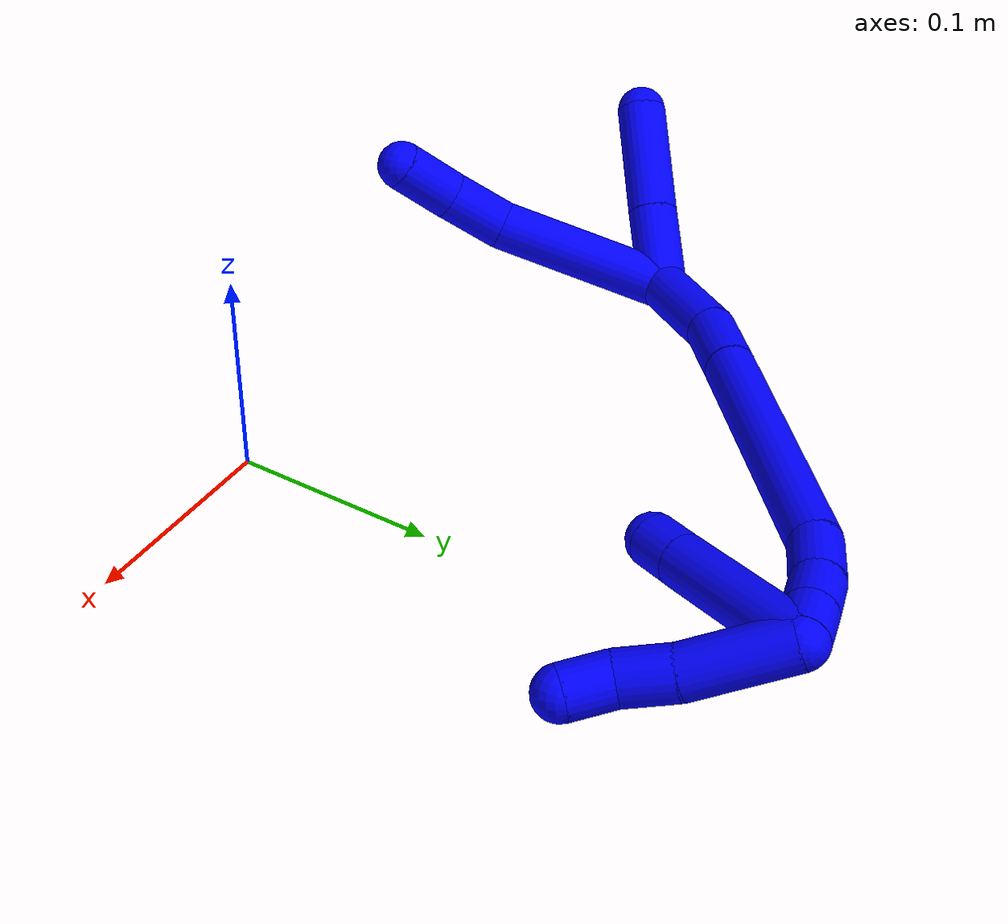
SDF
<sdf version="1.7">
 <world name="default">
  <model name="1">
   <static>0</static>
   <link name="1">
    <collision name="collision-cylinder-e_1_2_8">
     <pose>0.02136 -0.020133 -0.032819 2.59135 0.506487 1.48405</pose>
     <geometry><cylinder><radius>0.0125</radius><length>0.088061</length></cylinder></geometry>
     <surface>
      <friction><ode><mu>1.16</mu><mu2>1.16</mu2><slip1>0</slip1><slip2>0</slip2></ode></friction>
      <contact><ode><kp>1e+06</kp><kd>1</kd><max_vel>0</max_vel><min_depth>0.001</min_depth></ode></contact>
     </surface>
    </collision>
    <visual name="visual-cylinder-e_1_2_8">
     <pose>0.02136 -0.020133 -0.032819 2.59135 0.506487 1.48405</pose>
     <geometry><cylinder><radius>0.0125</radius><length>0.088061</length></cylinder></geometry>
     <material><ambient>0 0 1 1</ambient></material>
    </visual>
    <collision name="collision-cylinder-e_2_8_9">
     <pose>0.050889 -0.050551 -0.074156 2.26246 0.549048 1.07923</pose>
     <geometry><cylinder><radius>0.0125</radius><length>0.03131</length></cylinder></geometry>
     <surface>
      <friction><ode><mu>1.16</mu><mu2>1.16</mu2><slip1>0</slip1><slip2>0</slip2></ode></friction>
      <contact><ode><kp>1e+06</kp><kd>1</kd><max_vel>0</max_vel><min_depth>0.001</min_depth></ode></contact>
     </surface>
    </collision>
    <visual name="visual-cylinder-e_2_8_9">
     <pose>0.050889 -0.050551 -0.074156 2.26246 0.549048 1.07923</pose>
     <geometry><cylinder><radius>0.0125</radius><length>0.03131</length></cylinder></geometry>
     <material><ambient>0 0 1 1</ambient></material>
    </visual>
    <collision name="collision-cylinder-e_3_9_6">
     <pose>0.068443 -0.071785 -0.087831 2.01098 0.659537 0.989552</pose>
     <geometry><cylinder><radius>0.0125</radius><length>0.030629</length></cylinder></geometry>
     <surface>
      <friction><ode><mu>1.16</mu><mu2>1.16</mu2><slip1>0</slip1><slip2>0</slip2></ode></friction>
      <contact><ode><kp>1e+06</kp><kd>1</kd><max_vel>0</max_vel><min_depth>0.001</min_depth></ode></contact>
     </surface>
    </collision>
    <visual name="visual-cylinder-e_3_9_6">
     <pose>0.068443 -0.071785 -0.087831 2.01098 0.659537 0.989552</pose>
     <geometry><cylinder><radius>0.0125</radius><length>0.030629</length></cylinder></geometry>
     <material><ambient>0 0 1 1</ambient></material>
    </visual>
    <collision name="collision-cylinder-e_1_2_10">
     <pose>-0.01025 -0.014783 -0.009461 2.14009 -0.528571 -0.918436</pose>
     <geometry><cylinder><radius>0.0125</radius><length>0.04065</length></cylinder></geometry>
     <surface>
      <friction><ode><mu>1.16</mu><mu2>1.16</mu2><slip1>0</slip1><slip2>0</slip2></ode></friction>
      <contact><ode><kp>1e+06</kp><kd>1</kd><max_vel>0</max_vel><min_depth>0.001</min_depth></ode></contact>
     </surface>
    </collision>
    <visual name="visual-cylinder-e_1_2_10">
     <pose>-0.01025 -0.014783 -0.009461 2.14009 -0.528571 -0.918436</pose>
     <geometry><cylinder><radius>0.0125</radius><length>0.04065</length></cylinder></geometry>
     <material><ambient>0 0 1 1</ambient></material>
    </visual>
    <collision name="collision-cylinder-e_2_10_5">
     <pose>-0.035967 -0.0509 -0.032569 2.1399 -0.548276 -0.949144</pose>
     <geometry><cylinder><radius>0.0125</radius><length>0.05935</length></cylinder></geometry>
     <surface>
      <friction><ode><mu>1.16</mu><mu2>1.16</mu2><slip1>0</slip1><slip2>0</slip2></ode></friction>
      <contact><ode><kp>1e+06</kp><kd>1</kd><max_vel>0</max_vel><min_depth>0.001</min_depth></ode></contact>
     </surface>
    </collision>
    <visual name="visual-cylinder-e_2_10_5">
     <pose>-0.035967 -0.0509 -0.032569 2.1399 -0.548276 -0.949144</pose>
     <geometry><cylinder><radius>0.0125</radius><length>0.05935</length></cylinder></geometry>
     <material><ambient>0 0 1 1</ambient></material>
    </visual>
    <collision name="collision-cylinder-e_1_2_11">
     <pose>0.009969 0.004055 0.024302 -0.165315 0.384473 -0.032248</pose>
     <geometry><cylinder><radius>0.0125</radius><length>0.053157</length></cylinder></geometry>
     <surface>
      <friction><ode><mu>1.16</mu><mu2>1.16</mu2><slip1>0</slip1><slip2>0</slip2></ode></friction>
      <contact><ode><kp>1e+06</kp><kd>1</kd><max_vel>0</max_vel><min_depth>0.001</min_depth></ode></contact>
     </surface>
    </collision>
    <visual name="visual-cylinder-e_1_2_11">
     <pose>0.009969 0.004055 0.024302 -0.165315 0.384473 -0.032248</pose>
     <geometry><cylinder><radius>0.0125</radius><length>0.053157</length></cylinder></geometry>
     <material><ambient>0 0 1 1</ambient></material>
    </visual>
    <collision name="collision-cylinder-e_2_11_12">
     <pose>0.030908 0.010638 0.063485 -0.168318 0.628536 -0.054826</pose>
     <geometry><cylinder><radius>0.0125</radius><length>0.037318</length></cylinder></geometry>
     <surface>
      <friction><ode><mu>1.16</mu><mu2>1.16</mu2><slip1>0</slip1><slip2>0</slip2></ode></friction>
      <contact><ode><kp>1e+06</kp><kd>1</kd><max_vel>0</max_vel><min_depth>0.001</min_depth></ode></contact>
     </surface>
    </collision>
    <visual name="visual-cylinder-e_2_11_12">
     <pose>0.030908 0.010638 0.063485 -0.168318 0.628536 -0.054826</pose>
     <geometry><cylinder><radius>0.0125</radius><length>0.037318</length></cylinder></geometry>
     <material><ambient>0 0 1 1</ambient></material>
    </visual>
    <collision name="collision-cylinder-e_3_12_13">
     <pose>0.081711 0.026013 0.133176 -0.230234 0.61576 -0.073505</pose>
     <geometry><cylinder><radius>0.0125</radius><length>0.137926</length></cylinder></geometry>
     <surface>
      <friction><ode><mu>1.16</mu><mu2>1.16</mu2><slip1>0</slip1><slip2>0</slip2></ode></friction>
      <contact><ode><kp>1e+06</kp><kd>1</kd><max_vel>0</max_vel><min_depth>0.001</min_depth></ode></contact>
     </surface>
    </collision>
    <visual name="visual-cylinder-e_3_12_13">
     <pose>0.081711 0.026013 0.133176 -0.230234 0.61576 -0.073505</pose>
     <geometry><cylinder><radius>0.0125</radius><length>0.137926</length></cylinder></geometry>
     <material><ambient>0 0 1 1</ambient></material>
    </visual>
    <collision name="collision-cylinder-e_4_13_14">
     <pose>0.132109 0.040493 0.196579 -0.187782 0.879407 -0.088539</pose>
     <geometry><cylinder><radius>0.0125</radius><length>0.027434</length></cylinder></geometry>
     <surface>
      <friction><ode><mu>1.16</mu><mu2>1.16</mu2><slip1>0</slip1><slip2>0</slip2></ode></friction>
      <contact><ode><kp>1e+06</kp><kd>1</kd><max_vel>0</max_vel><min_depth>0.001</min_depth></ode></contact>
     </surface>
    </collision>
    <visual name="visual-cylinder-e_4_13_14">
     <pose>0.132109 0.040493 0.196579 -0.187782 0.879407 -0.088539</pose>
     <geometry><cylinder><radius>0.0125</radius><length>0.027434</length></cylinder></geometry>
     <material><ambient>0 0 1 1</ambient></material>
    </visual>
    <collision name="collision-cylinder-e_5_14_15">
     <pose>0.152597 0.042362 0.210758 -0.042242 1.05752 -0.024683</pose>
     <geometry><cylinder><radius>0.0125</radius><length>0.022776</length></cylinder></geometry>
     <surface>
      <friction><ode><mu>1.16</mu><mu2>1.16</mu2><slip1>0</slip1><slip2>0</slip2></ode></friction>
      <contact><ode><kp>1e+06</kp><kd>1</kd><max_vel>0</max_vel><min_depth>0.001</min_depth></ode></contact>
     </surface>
    </collision>
    <visual name="visual-cylinder-e_5_14_15">
     <pose>0.152597 0.042362 0.210758 -0.042242 1.05752 -0.024683</pose>
     <geometry><cylinder><radius>0.0125</radius><length>0.022776</length></cylinder></geometry>
     <material><ambient>0 0 1 1</ambient></material>
    </visual>
    <collision name="collision-cylinder-e_6_15_1">
     <pose>0.171928 0.042507 0.221424 0.017913 1.07581 0.010687</pose>
     <geometry><cylinder><radius>0.0125</radius><length>0.02139</length></cylinder></geometry>
     <surface>
      <friction><ode><mu>1.16</mu><mu2>1.16</mu2><slip1>0</slip1><slip2>0</slip2></ode></friction>
      <contact><ode><kp>1e+06</kp><kd>1</kd><max_vel>0</max_vel><min_depth>0.001</min_depth></ode></contact>
     </surface>
    </collision>
    <visual name="visual-cylinder-e_6_15_1">
     <pose>0.171928 0.042507 0.221424 0.017913 1.07581 0.010687</pose>
     <geometry><cylinder><radius>0.0125</radius><length>0.02139</length></cylinder></geometry>
     <material><ambient>0 0 1 1</ambient></material>
    </visual>
    <collision name="collision-cylinder-e_1_1_16">
     <pose>0.197777 0.046544 0.207678 -2.92572 0.706182 -2.56968</pose>
     <geometry><cylinder><radius>0.0125</radius><length>0.050661</length></cylinder></geometry>
     <surface>
      <friction><ode><mu>1.16</mu><mu2>1.16</mu2><slip1>0</slip1><slip2>0</slip2></ode></friction>
      <contact><ode><kp>1e+06</kp><kd>1</kd><max_vel>0</max_vel><min_depth>0.001</min_depth></ode></contact>
     </surface>
    </collision>
    <visual name="visual-cylinder-e_1_1_16">
     <pose>0.197777 0.046544 0.207678 -2.92572 0.706182 -2.56968</pose>
     <geometry><cylinder><radius>0.0125</radius><length>0.050661</length></cylinder></geometry>
     <material><ambient>0 0 1 1</ambient></material>
    </visual>
    <collision name="collision-cylinder-e_2_16_17">
     <pose>0.222308 0.050827 0.178549 -3.12665 0.665739 -3.09837</pose>
     <geometry><cylinder><radius>0.0125</radius><length>0.026206</length></cylinder></geometry>
     <surface>
      <friction><ode><mu>1.16</mu><mu2>1.16</mu2><slip1>0</slip1><slip2>0</slip2></ode></friction>
      <contact><ode><kp>1e+06</kp><kd>1</kd><max_vel>0</max_vel><min_depth>0.001</min_depth></ode></contact>
     </surface>
    </collision>
    <visual name="visual-cylinder-e_2_16_17">
     <pose>0.222308 0.050827 0.178549 -3.12665 0.665739 -3.09837</pose>
     <geometry><cylinder><radius>0.0125</radius><length>0.026206</length></cylinder></geometry>
     <material><ambient>0 0 1 1</ambient></material>
    </visual>
    <collision name="collision-cylinder-e_3_17_4">
     <pose>0.240101 0.050931 0.161944 3.1337 0.994682 3.12706</pose>
     <geometry><cylinder><radius>0.0125</radius><length>0.023132</length></cylinder></geometry>
     <surface>
      <friction><ode><mu>1.16</mu><mu2>1.16</mu2><slip1>0</slip1><slip2>0</slip2></ode></friction>
      <contact><ode><kp>1e+06</kp><kd>1</kd><max_vel>0</max_vel><min_depth>0.001</min_depth></ode></contact>
     </surface>
    </collision>
    <visual name="visual-cylinder-e_3_17_4">
     <pose>0.240101 0.050931 0.161944 3.1337 0.994682 3.12706</pose>
     <geometry><cylinder><radius>0.0125</radius><length>0.023132</length></cylinder></geometry>
     <material><ambient>0 0 1 1</ambient></material>
    </visual>
    <collision name="collision-cylinder-e_1_1_18">
     <pose>0.172772 0.039111 0.188119 3.05569 -0.218811 -2.39571</pose>
     <geometry><cylinder><radius>0.0125</radius><length>0.078937</length></cylinder></geometry>
     <surface>
      <friction><ode><mu>1.16</mu><mu2>1.16</mu2><slip1>0</slip1><slip2>0</slip2></ode></friction>
      <contact><ode><kp>1e+06</kp><kd>1</kd><max_vel>0</max_vel><min_depth>0.001</min_depth></ode></contact>
     </surface>
    </collision>
    <visual name="visual-cylinder-e_1_1_18">
     <pose>0.172772 0.039111 0.188119 3.05569 -0.218811 -2.39571</pose>
     <geometry><cylinder><radius>0.0125</radius><length>0.078937</length></cylinder></geometry>
     <material><ambient>0 0 1 1</ambient></material>
    </visual>
    <collision name="collision-cylinder-e_2_18_3">
     <pose>0.161803 0.034814 0.139527 3.0448 -0.230019 -2.34754</pose>
     <geometry><cylinder><radius>0.0125</radius><length>0.021063</length></cylinder></geometry>
     <surface>
      <friction><ode><mu>1.16</mu><mu2>1.16</mu2><slip1>0</slip1><slip2>0</slip2></ode></friction>
      <contact><ode><kp>1e+06</kp><kd>1</kd><max_vel>0</max_vel><min_depth>0.001</min_depth></ode></contact>
     </surface>
    </collision>
    <visual name="visual-cylinder-e_2_18_3">
     <pose>0.161803 0.034814 0.139527 3.0448 -0.230019 -2.34754</pose>
     <geometry><cylinder><radius>0.0125</radius><length>0.021063</length></cylinder></geometry>
     <material><ambient>0 0 1 1</ambient></material>
    </visual>
    <collision name="collision-sphere-3">
     <pose>0.159402 0.033823 0.129321 0 -0 0</pose>
     <geometry><sphere><radius>0.0125</radius></sphere></geometry>
     <surface>
      <friction><ode><mu>1.16</mu><mu2>1.16</mu2><slip1>0</slip1><slip2>0</slip2></ode></friction>
      <contact><ode><kp>1e+06</kp><kd>1</kd><max_vel>0</max_vel><min_depth>0.001</min_depth></ode></contact>
     </surface>
    </collision>
    <visual name="visual-sphere-3">
     <pose>0.159402 0.033823 0.129321 0 -0 0</pose>
     <geometry><sphere><radius>0.0125</radius></sphere></geometry>
     <material><ambient>0 0 1 1</ambient></material>
    </visual>
    <collision name="collision-sphere-5">
     <pose>-0.051434 -0.072234 -0.046216 0 -0 0</pose>
     <geometry><sphere><radius>0.0125</radius></sphere></geometry>
     <surface>
      <friction><ode><mu>1.16</mu><mu2>1.16</mu2><slip1>0</slip1><slip2>0</slip2></ode></friction>
      <contact><ode><kp>1e+06</kp><kd>1</kd><max_vel>0</max_vel><min_depth>0.001</min_depth></ode></contact>
     </surface>
    </collision>
    <visual name="visual-sphere-5">
     <pose>-0.051434 -0.072234 -0.046216 0 -0 0</pose>
     <geometry><sphere><radius>0.0125</radius></sphere></geometry>
     <material><ambient>0 0 1 1</ambient></material>
    </visual>
    <collision name="collision-sphere-10">
     <pose>-0.0205 -0.029566 -0.018922 0 -0 0</pose>
     <geometry><sphere><radius>0.0125</radius></sphere></geometry>
     <surface>
      <friction><ode><mu>1.16</mu><mu2>1.16</mu2><slip1>0</slip1><slip2>0</slip2></ode></friction>
      <contact><ode><kp>1e+06</kp><kd>1</kd><max_vel>0</max_vel><min_depth>0.001</min_depth></ode></contact>
     </surface>
    </collision>
    <visual name="visual-sphere-10">
     <pose>-0.0205 -0.029566 -0.018922 0 -0 0</pose>
     <geometry><sphere><radius>0.0125</radius></sphere></geometry>
     <material><ambient>0 0 1 1</ambient></material>
    </visual>
    <collision name="collision-sphere-6">
     <pose>0.077827 -0.082734 -0.092988 0 -0 0</pose>
     <geometry><sphere><radius>0.0125</radius></sphere></geometry>
     <surface>
      <friction><ode><mu>1.16</mu><mu2>1.16</mu2><slip1>0</slip1><slip2>0</slip2></ode></friction>
      <contact><ode><kp>1e+06</kp><kd>1</kd><max_vel>0</max_vel><min_depth>0.001</min_depth></ode></contact>
     </surface>
    </collision>
    <visual name="visual-sphere-6">
     <pose>0.077827 -0.082734 -0.092988 0 -0 0</pose>
     <geometry><sphere><radius>0.0125</radius></sphere></geometry>
     <material><ambient>0 0 1 1</ambient></material>
    </visual>
    <collision name="collision-sphere-9">
     <pose>0.059059 -0.060836 -0.082674 0 -0 0</pose>
     <geometry><sphere><radius>0.0125</radius></sphere></geometry>
     <surface>
      <friction><ode><mu>1.16</mu><mu2>1.16</mu2><slip1>0</slip1><slip2>0</slip2></ode></friction>
      <contact><ode><kp>1e+06</kp><kd>1</kd><max_vel>0</max_vel><min_depth>0.001</min_depth></ode></contact>
     </surface>
    </collision>
    <visual name="visual-sphere-9">
     <pose>0.059059 -0.060836 -0.082674 0 -0 0</pose>
     <geometry><sphere><radius>0.0125</radius></sphere></geometry>
     <material><ambient>0 0 1 1</ambient></material>
    </visual>
    <collision name="collision-sphere-2">
     <geometry><sphere><radius>0.0125</radius></sphere></geometry>
     <surface>
      <friction><ode><mu>1.16</mu><mu2>1.16</mu2><slip1>0</slip1><slip2>0</slip2></ode></friction>
      <contact><ode><kp>1e+06</kp><kd>1</kd><max_vel>0</max_vel><min_depth>0.001</min_depth></ode></contact>
     </surface>
    </collision>
    <visual name="visual-sphere-2">
     <geometry><sphere><radius>0.0125</radius></sphere></geometry>
     <material><ambient>0 0 1 1</ambient></material>
    </visual>
    <collision name="collision-sphere-8">
     <pose>0.042719 -0.040266 -0.065639 0 -0 0</pose>
     <geometry><sphere><radius>0.0125</radius></sphere></geometry>
     <surface>
      <friction><ode><mu>1.16</mu><mu2>1.16</mu2><slip1>0</slip1><slip2>0</slip2></ode></friction>
      <contact><ode><kp>1e+06</kp><kd>1</kd><max_vel>0</max_vel><min_depth>0.001</min_depth></ode></contact>
     </surface>
    </collision>
    <visual name="visual-sphere-8">
     <pose>0.042719 -0.040266 -0.065639 0 -0 0</pose>
     <geometry><sphere><radius>0.0125</radius></sphere></geometry>
     <material><ambient>0 0 1 1</ambient></material>
    </visual>
    <collision name="collision-sphere-11">
     <pose>0.019938 0.008109 0.048605 0 -0 0</pose>
     <geometry><sphere><radius>0.0125</radius></sphere></geometry>
     <surface>
      <friction><ode><mu>1.16</mu><mu2>1.16</mu2><slip1>0</slip1><slip2>0</slip2></ode></friction>
      <contact><ode><kp>1e+06</kp><kd>1</kd><max_vel>0</max_vel><min_depth>0.001</min_depth></ode></contact>
     </surface>
    </collision>
    <visual name="visual-sphere-11">
     <pose>0.019938 0.008109 0.048605 0 -0 0</pose>
     <geometry><sphere><radius>0.0125</radius></sphere></geometry>
     <material><ambient>0 0 1 1</ambient></material>
    </visual>
    <collision name="collision-sphere-12">
     <pose>0.041879 0.013166 0.078364 0 -0 0</pose>
     <geometry><sphere><radius>0.0125</radius></sphere></geometry>
     <surface>
      <friction><ode><mu>1.16</mu><mu2>1.16</mu2><slip1>0</slip1><slip2>0</slip2></ode></friction>
      <contact><ode><kp>1e+06</kp><kd>1</kd><max_vel>0</max_vel><min_depth>0.001</min_depth></ode></contact>
     </surface>
    </collision>
    <visual name="visual-sphere-12">
     <pose>0.041879 0.013166 0.078364 0 -0 0</pose>
     <geometry><sphere><radius>0.0125</radius></sphere></geometry>
     <material><ambient>0 0 1 1</ambient></material>
    </visual>
    <collision name="collision-sphere-13">
     <pose>0.121542 0.038861 0.187987 0 -0 0</pose>
     <geometry><sphere><radius>0.0125</radius></sphere></geometry>
     <surface>
      <friction><ode><mu>1.16</mu><mu2>1.16</mu2><slip1>0</slip1><slip2>0</slip2></ode></friction>
      <contact><ode><kp>1e+06</kp><kd>1</kd><max_vel>0</max_vel><min_depth>0.001</min_depth></ode></contact>
     </surface>
    </collision>
    <visual name="visual-sphere-13">
     <pose>0.121542 0.038861 0.187987 0 -0 0</pose>
     <geometry><sphere><radius>0.0125</radius></sphere></geometry>
     <material><ambient>0 0 1 1</ambient></material>
    </visual>
    <collision name="collision-sphere-14">
     <pose>0.142676 0.042126 0.205171 0 -0 0</pose>
     <geometry><sphere><radius>0.0125</radius></sphere></geometry>
     <surface>
      <friction><ode><mu>1.16</mu><mu2>1.16</mu2><slip1>0</slip1><slip2>0</slip2></ode></friction>
      <contact><ode><kp>1e+06</kp><kd>1</kd><max_vel>0</max_vel><min_depth>0.001</min_depth></ode></contact>
     </surface>
    </collision>
    <visual name="visual-sphere-14">
     <pose>0.142676 0.042126 0.205171 0 -0 0</pose>
     <geometry><sphere><radius>0.0125</radius></sphere></geometry>
     <material><ambient>0 0 1 1</ambient></material>
    </visual>
    <collision name="collision-sphere-15">
     <pose>0.162517 0.042598 0.216345 0 -0 0</pose>
     <geometry><sphere><radius>0.0125</radius></sphere></geometry>
     <surface>
      <friction><ode><mu>1.16</mu><mu2>1.16</mu2><slip1>0</slip1><slip2>0</slip2></ode></friction>
      <contact><ode><kp>1e+06</kp><kd>1</kd><max_vel>0</max_vel><min_depth>0.001</min_depth></ode></contact>
     </surface>
    </collision>
    <visual name="visual-sphere-15">
     <pose>0.162517 0.042598 0.216345 0 -0 0</pose>
     <geometry><sphere><radius>0.0125</radius></sphere></geometry>
     <material><ambient>0 0 1 1</ambient></material>
    </visual>
    <collision name="collision-sphere-1">
     <pose>0.181339 0.042416 0.226504 0 -0 0</pose>
     <geometry><sphere><radius>0.0125</radius></sphere></geometry>
     <surface>
      <friction><ode><mu>1.16</mu><mu2>1.16</mu2><slip1>0</slip1><slip2>0</slip2></ode></friction>
      <contact><ode><kp>1e+06</kp><kd>1</kd><max_vel>0</max_vel><min_depth>0.001</min_depth></ode></contact>
     </surface>
    </collision>
    <visual name="visual-sphere-1">
     <pose>0.181339 0.042416 0.226504 0 -0 0</pose>
     <geometry><sphere><radius>0.0125</radius></sphere></geometry>
     <material><ambient>0 0 1 1</ambient></material>
    </visual>
    <collision name="collision-sphere-18">
     <pose>0.164205 0.035805 0.149733 0 -0 0</pose>
     <geometry><sphere><radius>0.0125</radius></sphere></geometry>
     <surface>
      <friction><ode><mu>1.16</mu><mu2>1.16</mu2><slip1>0</slip1><slip2>0</slip2></ode></friction>
      <contact><ode><kp>1e+06</kp><kd>1</kd><max_vel>0</max_vel><min_depth>0.001</min_depth></ode></contact>
     </surface>
    </collision>
    <visual name="visual-sphere-18">
     <pose>0.164205 0.035805 0.149733 0 -0 0</pose>
     <geometry><sphere><radius>0.0125</radius></sphere></geometry>
     <material><ambient>0 0 1 1</ambient></material>
    </visual>
    <collision name="collision-sphere-16">
     <pose>0.214215 0.050672 0.188853 0 -0 0</pose>
     <geometry><sphere><radius>0.0125</radius></sphere></geometry>
     <surface>
      <friction><ode><mu>1.16</mu><mu2>1.16</mu2><slip1>0</slip1><slip2>0</slip2></ode></friction>
      <contact><ode><kp>1e+06</kp><kd>1</kd><max_vel>0</max_vel><min_depth>0.001</min_depth></ode></contact>
     </surface>
    </collision>
    <visual name="visual-sphere-16">
     <pose>0.214215 0.050672 0.188853 0 -0 0</pose>
     <geometry><sphere><radius>0.0125</radius></sphere></geometry>
     <material><ambient>0 0 1 1</ambient></material>
    </visual>
    <collision name="collision-sphere-17">
     <pose>0.230401 0.050981 0.168245 0 -0 0</pose>
     <geometry><sphere><radius>0.0125</radius></sphere></geometry>
     <surface>
      <friction><ode><mu>1.16</mu><mu2>1.16</mu2><slip1>0</slip1><slip2>0</slip2></ode></friction>
      <contact><ode><kp>1e+06</kp><kd>1</kd><max_vel>0</max_vel><min_depth>0.001</min_depth></ode></contact>
     </surface>
    </collision>
    <visual name="visual-sphere-17">
     <pose>0.230401 0.050981 0.168245 0 -0 0</pose>
     <geometry><sphere><radius>0.0125</radius></sphere></geometry>
     <material><ambient>0 0 1 1</ambient></material>
    </visual>
    <collision name="collision-sphere-4">
     <pose>0.2498 0.050881 0.155644 0 -0 0</pose>
     <geometry><sphere><radius>0.0125</radius></sphere></geometry>
     <surface>
      <friction><ode><mu>1.16</mu><mu2>1.16</mu2><slip1>0</slip1><slip2>0</slip2></ode></friction>
      <contact><ode><kp>1e+06</kp><kd>1</kd><max_vel>0</max_vel><min_depth>0.001</min_depth></ode></contact>
     </surface>
    </collision>
    <visual name="visual-sphere-4">
     <pose>0.2498 0.050881 0.155644 0 -0 0</pose>
     <geometry><sphere><radius>0.0125</radius></sphere></geometry>
     <material><ambient>0 0 1 1</ambient></material>
    </visual>
    <inertial>
     <pose>0.086928 0.00893 0.084632 0 -0 0</pose>
     <mass>0.75</mass>
     <inertia>
      <ixx>0.00019</ixx>
      <ixy>0</ixy>
      <ixz>0</ixz>
      <iyy>0.000289</iyy>
      <iyz>0</iyz>
      <izz>-0.000162</izz>
     </inertia>
    </inertial>
   </link>
   <pose>-0.217611 0.100159 0.011492 -1.3004 -0.029862 -0.211089</pose>
  </model>
 </world>
</sdf>
